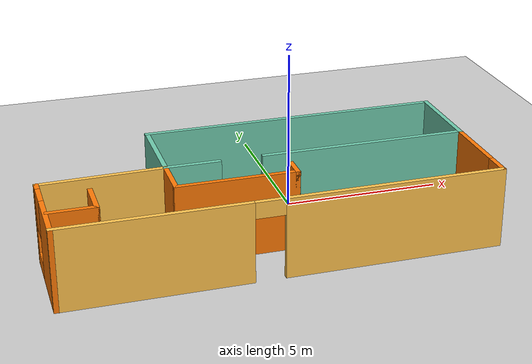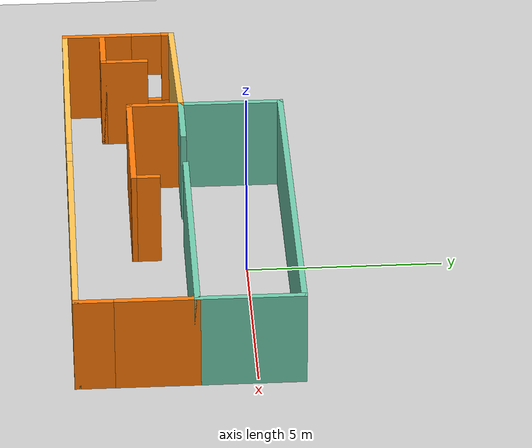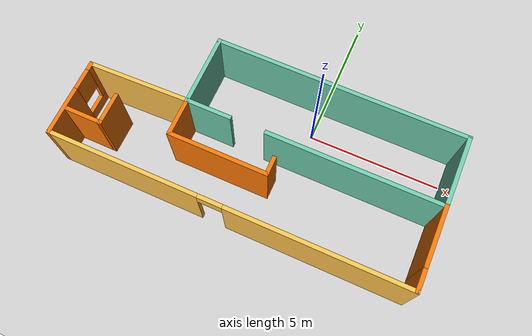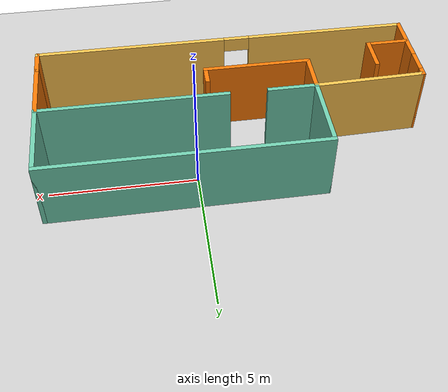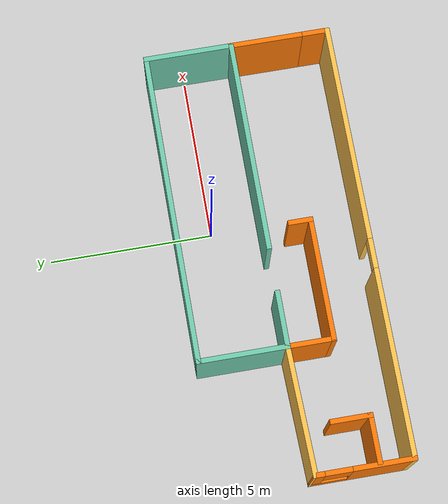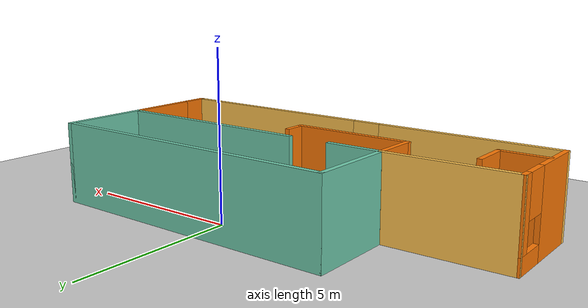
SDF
<sdf version="1.6">
 <world name="default">
  <light name="sun" type="directional">
   <pose>0 0 10 0 -0 0</pose>
   <diffuse>0.8 0.8 0.8 1</diffuse>
   <specular>0.1 0.1 0.1 1</specular>
   <attenuation>
    <range>1000</range>
    <constant>0.9</constant>
    <linear>0.01</linear>
    <quadratic>0.001</quadratic>
   </attenuation>
   <direction>-0.5 0.5 -1</direction>
  </light>
  <model name="ground_plane">
   <static>1</static>
   <link name="link">
    <collision name="collision">
     <geometry><plane><normal>0 0 1</normal><size>100 100</size></plane></geometry>
     <surface><friction><ode><mu>100</mu><mu2>50</mu2></ode></friction></surface>
    </collision>
    <visual name="visual">
     <cast_shadows>0</cast_shadows>
     <geometry><plane><normal>0 0 1</normal><size>100 100</size></plane></geometry>
     <material>
      <script><uri>file://media/materials/scripts/gazebo.material</uri><name>Gazebo/Grey</name></script>
     </material>
    </visual>
   </link>
  </model>
  <gravity>0 0 -9.8</gravity>
  <magnetic_field>6e-06 2.3e-05 -4.2e-05</magnetic_field>
  <atmosphere type="adiabatic"/>
  <physics name="default_physics" default="0" type="ode">
   <max_step_size>0.001</max_step_size>
   <real_time_factor>1</real_time_factor>
   <real_time_update_rate>1000</real_time_update_rate>
  </physics>
  <scene><ambient>0.4 0.4 0.4 1</ambient><background>0.7 0.7 0.7 1</background><shadows>1</shadows></scene>
  <spherical_coordinates>
   <surface_model>EARTH_WGS84</surface_model>
   <latitude_deg>0</latitude_deg>
   <longitude_deg>0</longitude_deg>
   <elevation>0</elevation>
   <heading_deg>0</heading_deg>
  </spherical_coordinates>
  <model name="roomm">
   <pose>-1.44099 -1.6565 0 0 -0 0</pose>
   <link name="Wall_11">
    <collision name="Wall_11_Collision">
     <geometry><box><size>2.25 0.15 2.5</size></box></geometry>
     <pose>0 0 1.25 0 -0 0</pose>
    </collision>
    <visual name="Wall_11_Visual">
     <pose>0 0 1.25 0 -0 0</pose>
     <geometry><box><size>2.25 0.15 2.5</size></box></geometry>
     <material>
      <script><uri>file://media/materials/scripts/gazebo.material</uri><name>Gazebo/Grey</name></script>
      <ambient>0.996078 0.47451 0.0196078 1</ambient>
     </material>
     <meta><layer>0</layer></meta>
    </visual>
    <pose>6.55099 -0.875 0 0 0 -1.5708</pose>
   </link>
   <link name="Wall_15">
    <collision name="Wall_15_Collision">
     <geometry><box><size>1 0.15 2.5</size></box></geometry>
     <pose>0 0 1.25 0 -0 0</pose>
    </collision>
    <visual name="Wall_15_Visual">
     <pose>0 0 1.25 0 -0 0</pose>
     <geometry><box><size>1 0.15 2.5</size></box></geometry>
     <material>
      <script><uri>file://media/materials/scripts/gazebo.material</uri><name>Gazebo/Grey</name></script>
      <ambient>0.996078 0.47451 0.0196078 1</ambient>
     </material>
     <meta><layer>0</layer></meta>
    </visual>
    <pose>6.55099 -2.35 0 0 0 -1.5708</pose>
   </link>
   <link name="Wall_16">
    <pose>0.000986 -2.775 0 0 -0 3.14159</pose>
    <visual name="Wall_16_Visual_0">
     <pose>-3.28175 0 1.25 0 -0 0</pose>
     <geometry><box><size>6.6865 0.15 2.5</size></box></geometry>
     <material>
      <script><uri>file://media/materials/scripts/gazebo.material</uri><name>Gazebo/Grey</name></script>
      <ambient>1 0.764706 0.305882 1</ambient>
     </material>
     <meta><layer>0</layer></meta>
    </visual>
    <collision name="Wall_16_Collision_0">
     <geometry><box><size>6.6865 0.15 2.5</size></box></geometry>
     <pose>-3.28175 0 1.25 0 -0 0</pose>
    </collision>
    <visual name="Wall_16_Visual_1">
     <pose>3.79325 0 1.25 0 -0 0</pose>
     <geometry><box><size>5.6635 0.15 2.5</size></box></geometry>
     <material>
      <script><uri>file://media/materials/scripts/gazebo.material</uri><name>Gazebo/Grey</name></script>
      <ambient>1 0.764706 0.305882 1</ambient>
     </material>
     <meta><layer>0</layer></meta>
    </visual>
    <collision name="Wall_16_Collision_1">
     <geometry><box><size>5.6635 0.15 2.5</size></box></geometry>
     <pose>3.79325 0 1.25 0 -0 0</pose>
    </collision>
    <visual name="Wall_16_Visual_2">
     <pose>0.5115 0 2.25 0 -0 0</pose>
     <geometry><box><size>0.9 0.15 0.5</size></box></geometry>
     <material>
      <script><uri>file://media/materials/scripts/gazebo.material</uri><name>Gazebo/Grey</name></script>
      <ambient>1 0.764706 0.305882 1</ambient>
     </material>
     <meta><layer>0</layer></meta>
    </visual>
    <collision name="Wall_16_Collision_2">
     <geometry><box><size>0.9 0.15 0.5</size></box></geometry>
     <pose>0.5115 0 2.25 0 -0 0</pose>
    </collision>
   </link>
   <link name="Wall_17">
    <pose>-6.54901 -1.35 0 0 -0 1.5708</pose>
    <visual name="Wall_17_Visual_0">
     <pose>-0.57275 0 1.25 0 -0 0</pose>
     <geometry><box><size>1.8545 0.15 2.5</size></box></geometry>
     <material>
      <script><uri>file://media/materials/scripts/gazebo.material</uri><name>Gazebo/Grey</name></script>
      <ambient>0.996078 0.47451 0.0196078 1</ambient>
     </material>
     <meta><layer>0</layer></meta>
    </visual>
    <collision name="Wall_17_Collision_0">
     <geometry><box><size>1.8545 0.15 2.5</size></box></geometry>
     <pose>-0.57275 0 1.25 0 -0 0</pose>
    </collision>
    <visual name="Wall_17_Visual_1">
     <pose>0.92725 0 0.25 0 -0 0</pose>
     <geometry><box><size>1.1455 0.15 0.5</size></box></geometry>
     <material>
      <script><uri>file://media/materials/scripts/gazebo.material</uri><name>Gazebo/Grey</name></script>
      <ambient>0.996078 0.47451 0.0196078 1</ambient>
     </material>
     <meta><layer>0</layer></meta>
    </visual>
    <collision name="Wall_17_Collision_1">
     <geometry><box><size>1.1455 0.15 0.5</size></box></geometry>
     <pose>0.92725 0 0.25 0 -0 0</pose>
    </collision>
    <visual name="Wall_17_Visual_2">
     <pose>1.32725 0 1.5 0 -0 0</pose>
     <geometry><box><size>0.3455 0.15 2</size></box></geometry>
     <material>
      <script><uri>file://media/materials/scripts/gazebo.material</uri><name>Gazebo/Grey</name></script>
      <ambient>0.996078 0.47451 0.0196078 1</ambient>
     </material>
     <meta><layer>0</layer></meta>
    </visual>
    <collision name="Wall_17_Collision_2">
     <geometry><box><size>0.3455 0.15 2</size></box></geometry>
     <pose>1.32725 0 1.5 0 -0 0</pose>
    </collision>
    <visual name="Wall_17_Visual_3">
     <pose>0.7545 0 1.9 0 -0 0</pose>
     <geometry><box><size>0.8 0.15 1.2</size></box></geometry>
     <material>
      <script><uri>file://media/materials/scripts/gazebo.material</uri><name>Gazebo/Grey</name></script>
      <ambient>0.996078 0.47451 0.0196078 1</ambient>
     </material>
     <meta><layer>0</layer></meta>
    </visual>
    <collision name="Wall_17_Collision_3">
     <geometry><box><size>0.8 0.15 1.2</size></box></geometry>
     <pose>0.7545 0 1.9 0 -0 0</pose>
    </collision>
   </link>
   <link name="Wall_18">
    <collision name="Wall_18_Collision">
     <geometry><box><size>3.90133 0.15 2.5</size></box></geometry>
     <pose>0 0 1.25 0 -0 0</pose>
    </collision>
    <visual name="Wall_18_Visual">
     <pose>0 0 1.25 0 -0 0</pose>
     <geometry><box><size>3.90133 0.15 2.5</size></box></geometry>
     <material>
      <script><uri>file://media/materials/scripts/gazebo.material</uri><name>Gazebo/Grey</name></script>
      <ambient>1 0.764706 0.305882 1</ambient>
     </material>
     <meta><layer>0</layer></meta>
    </visual>
    <pose>-4.67401 0.125 0 0 -0 0.02666</pose>
   </link>
   <link name="Wall_20">
    <collision name="Wall_20_Collision">
     <geometry><box><size>1.5 0.15 2.5</size></box></geometry>
     <pose>0 0 1.25 0 -0 0</pose>
    </collision>
    <visual name="Wall_20_Visual">
     <pose>0 0 1.25 0 -0 0</pose>
     <geometry><box><size>1.5 0.15 2.5</size></box></geometry>
     <material>
      <script><uri>file://media/materials/scripts/gazebo.material</uri><name>Gazebo/Grey</name></script>
      <ambient>0.996078 0.47451 0.0196078 1</ambient>
     </material>
     <meta><layer>0</layer></meta>
    </visual>
    <pose>-5.81551 -1.78 0 0 -0 0</pose>
   </link>
   <link name="Wall_21">
    <collision name="Wall_21_Collision">
     <geometry><box><size>1.25 0.15 2.5</size></box></geometry>
     <pose>0 0 1.25 0 -0 0</pose>
    </collision>
    <visual name="Wall_21_Visual">
     <pose>0 0 1.25 0 -0 0</pose>
     <geometry><box><size>1.25 0.15 2.5</size></box></geometry>
     <material>
      <script><uri>file://media/materials/scripts/gazebo.material</uri><name>Gazebo/Grey</name></script>
      <ambient>0.996078 0.47451 0.0196078 1</ambient>
     </material>
     <meta><layer>0</layer></meta>
    </visual>
    <pose>-5.14051 -1.23 0 0 -0 1.5708</pose>
   </link>
   <link name="Wall_23">
    <collision name="Wall_23_Collision">
     <geometry><box><size>1.5 0.15 2.5</size></box></geometry>
     <pose>0 0 1.25 0 -0 0</pose>
    </collision>
    <visual name="Wall_23_Visual">
     <pose>0 0 1.25 0 -0 0</pose>
     <geometry><box><size>1.5 0.15 2.5</size></box></geometry>
     <material>
      <script><uri>file://media/materials/scripts/gazebo.material</uri><name>Gazebo/Grey</name></script>
      <ambient>0.996078 0.47451 0.0196078 1</ambient>
     </material>
     <meta><layer>0</layer></meta>
    </visual>
    <pose>-2.79901 -0.5 0 0 0 -1.5708</pose>
   </link>
   <link name="Wall_24">
    <collision name="Wall_24_Collision">
     <geometry><box><size>3.75 0.15 2.5</size></box></geometry>
     <pose>0 0 1.25 0 -0 0</pose>
    </collision>
    <visual name="Wall_24_Visual">
     <pose>0 0 1.25 0 -0 0</pose>
     <geometry><box><size>3.75 0.15 2.5</size></box></geometry>
     <material>
      <script><uri>file://media/materials/scripts/gazebo.material</uri><name>Gazebo/Grey</name></script>
      <ambient>0.996078 0.47451 0.0196078 1</ambient>
     </material>
     <meta><layer>0</layer></meta>
    </visual>
    <pose>-0.999014 -1.175 0 0 -0 0</pose>
   </link>
   <link name="Wall_25">
    <collision name="Wall_25_Collision">
     <geometry><box><size>0.75 0.15 2.5</size></box></geometry>
     <pose>0 0 1.25 0 -0 0</pose>
    </collision>
    <visual name="Wall_25_Visual">
     <pose>0 0 1.25 0 -0 0</pose>
     <geometry><box><size>0.75 0.15 2.5</size></box></geometry>
     <material>
      <script><uri>file://media/materials/scripts/gazebo.material</uri><name>Gazebo/Grey</name></script>
      <ambient>0.996078 0.47451 0.0196078 1</ambient>
     </material>
     <meta><layer>0</layer></meta>
    </visual>
    <pose>0.800986 -0.875 0 0 -0 1.5708</pose>
   </link>
   <link name="Wall_4">
    <collision name="Wall_4_Collision">
     <geometry><box><size>2.75 0.15 2.5</size></box></geometry>
     <pose>0 0 1.25 0 -0 0</pose>
    </collision>
    <visual name="Wall_4_Visual">
     <pose>0 0 1.25 0 -0 0</pose>
     <geometry><box><size>2.75 0.15 2.5</size></box></geometry>
     <material>
      <script><uri>file://media/materials/scripts/gazebo.material</uri><name>Gazebo/Grey</name></script>
      <ambient>0.435294 0.796078 0.67451 1</ambient>
     </material>
     <meta><layer>0</layer></meta>
    </visual>
    <pose>-2.79901 1.475 0 0 -0 1.5708</pose>
   </link>
   <link name="Wall_5">
    <collision name="Wall_5_Collision">
     <geometry><box><size>9.5 0.15 2.5</size></box></geometry>
     <pose>0 0 1.25 0 -0 0</pose>
    </collision>
    <visual name="Wall_5_Visual">
     <pose>0 0 1.25 0 -0 0</pose>
     <geometry><box><size>9.5 0.15 2.5</size></box></geometry>
     <material>
      <script><uri>file://media/materials/scripts/gazebo.material</uri><name>Gazebo/Grey</name></script>
      <ambient>0.435294 0.796078 0.67451 1</ambient>
     </material>
     <meta><layer>0</layer></meta>
    </visual>
    <pose>1.87599 2.775 0 0 -0 0</pose>
   </link>
   <link name="Wall_6">
    <collision name="Wall_6_Collision">
     <geometry><box><size>2.75 0.15 2.5</size></box></geometry>
     <pose>0 0 1.25 0 -0 0</pose>
    </collision>
    <visual name="Wall_6_Visual">
     <pose>0 0 1.25 0 -0 0</pose>
     <geometry><box><size>2.75 0.15 2.5</size></box></geometry>
     <material>
      <script><uri>file://media/materials/scripts/gazebo.material</uri><name>Gazebo/Grey</name></script>
      <ambient>0.435294 0.796078 0.67451 1</ambient>
     </material>
     <meta><layer>0</layer></meta>
    </visual>
    <pose>6.55099 1.475 0 0 0 -1.5708</pose>
   </link>
   <link name="Wall_7">
    <collision name="Wall_7_Collision">
     <geometry><box><size>6.5 0.15 2.5</size></box></geometry>
     <pose>0 0 1.25 0 -0 0</pose>
    </collision>
    <visual name="Wall_7_Visual">
     <pose>0 0 1.25 0 -0 0</pose>
     <geometry><box><size>6.5 0.15 2.5</size></box></geometry>
     <material>
      <script><uri>file://media/materials/scripts/gazebo.material</uri><name>Gazebo/Grey</name></script>
      <ambient>0.435294 0.796078 0.67451 1</ambient>
     </material>
     <meta><layer>0</layer></meta>
    </visual>
    <pose>3.37599 0.175 0 0 -0 3.14159</pose>
   </link>
   <link name="Wall_9">
    <collision name="Wall_9_Collision">
     <geometry><box><size>1.75 0.15 2.5</size></box></geometry>
     <pose>0 0 1.25 0 -0 0</pose>
    </collision>
    <visual name="Wall_9_Visual">
     <pose>0 0 1.25 0 -0 0</pose>
     <geometry><box><size>1.75 0.15 2.5</size></box></geometry>
     <material>
      <script><uri>file://media/materials/scripts/gazebo.material</uri><name>Gazebo/Grey</name></script>
      <ambient>0.435294 0.796078 0.67451 1</ambient>
     </material>
     <meta><layer>0</layer></meta>
    </visual>
    <pose>-1.99901 0.175 0 0 -0 0</pose>
   </link>
   <static>1</static>
  </model>
 </world>
</sdf>
